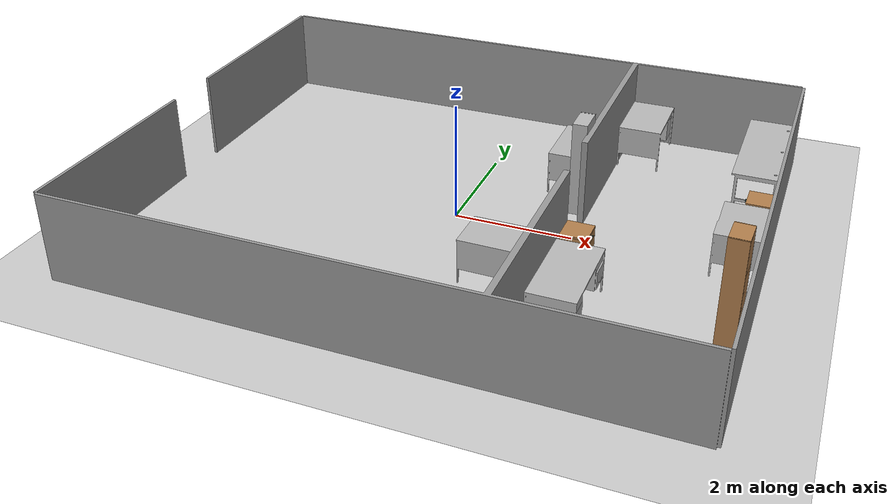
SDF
<sdf version="1.4">
 <world name="default">
  <model name="rnd_room_c3_a">
   <link name="link_0">
    <inertial>
     <mass>1</mass>
     <inertia>
      <ixx>0.166667</ixx>
      <ixy>0</ixy>
      <ixz>0</ixz>
      <iyy>0.166667</iyy>
      <iyz>0</iyz>
      <izz>0.166667</izz>
     </inertia>
    </inertial>
    <visual name="visual">
     <geometry><mesh><uri>model://RandomRooms/rnd_room_c2_04.dae</uri><scale>1 1 1</scale></mesh></geometry>
     <material>
      <lighting>1</lighting>
      <script><uri>model://RandomRooms/rnd_room_c2_04.dae</uri><name>Gazebo/Grey</name></script>
      <shader type="pixel"><normal_map>__default__</normal_map></shader>
     </material>
    </visual>
    <collision name="collision">
     <geometry><mesh><uri>model://RandomRooms/rnd_room_c2_04.dae</uri><scale>1 1 1</scale></mesh></geometry>
     <surface>
      <friction>
       <ode><mu>1</mu><mu2>1</mu2><fdir1>0 0 0</fdir1><slip1>0</slip1><slip2>0</slip2></ode>
       <torsional>
        <coefficient>1</coefficient>
        <patch_radius>0</patch_radius>
        <surface_radius>0</surface_radius>
        <use_patch_radius>1</use_patch_radius>
        <ode><slip>0</slip></ode>
       </torsional>
      </friction>
      <bounce><restitution_coefficient>0</restitution_coefficient><threshold>1e+06</threshold></bounce>
      <contact>
       <collide_without_contact>0</collide_without_contact>
       <collide_without_contact_bitmask>1</collide_without_contact_bitmask>
       <collide_bitmask>1</collide_bitmask>
       <ode>
        <soft_cfm>0</soft_cfm>
        <soft_erp>0.2</soft_erp>
        <kp>1e+13</kp>
        <kd>1</kd>
        <max_vel>0.01</max_vel>
        <min_depth>0</min_depth>
       </ode>
       <bullet>
        <split_impulse>1</split_impulse>
        <split_impulse_penetration_threshold>-0.01</split_impulse_penetration_threshold>
        <soft_cfm>0</soft_cfm>
        <soft_erp>0.2</soft_erp>
        <kp>1e+13</kp>
        <kd>1</kd>
       </bullet>
      </contact>
     </surface>
    </collision>
   </link>
   <static>1</static>
  </model>
  <model name="gplane">
   <link name="body">
    <collision name="gplane_coll">
     <geometry><plane><normal>0 0 1</normal><size>25 25</size></plane></geometry>
     <surface><contact><ode><kp>1e+06</kp><kd>1</kd></ode></contact></surface>
     <laser_retro>2000</laser_retro>
    </collision>
    <visual name="gplane_vis">
     <geometry><plane><normal>0 0 1</normal><size>25 25</size></plane></geometry>
     <material>
      <script>
       <uri>model://base_materials/carpet/scripts</uri>
       <uri>model://base_materials/carpet/textures</uri>
       <name>carpet/carpet01</name>
      </script>
     </material>
     <cast_shadows>0</cast_shadows>
    </visual>
    <velocity_decay><linear>0</linear><angular>0</angular></velocity_decay>
   </link>
   <static>1</static>
  </model>
  <model name="wagon_2">
   <link name="link">
    <inertial>
     <mass>10</mass>
     <inertia><ixx>1</ixx><ixy>0</ixy><ixz>0</ixz><iyy>1</iyy><iyz>0</iyz><izz>1</izz></inertia>
    </inertial>
    <visual name="left_board">
     <pose>-0.2325 0.01 0.345 0 -0 0</pose>
     <geometry><box><size>0.415 0.02 0.59</size></box></geometry>
     <material>
      <script><uri>model://base_materials/wood/scripts/wood.material</uri><name>base_materials/wood</name></script>
     </material>
    </visual>
    <collision name="collision_left_board">
     <pose>-0.2325 0.01 0.345 0 -0 0</pose>
     <geometry><box><size>0.415 0.02 0.59</size></box></geometry>
    </collision>
    <visual name="right_board">
     <pose>-0.2325 0.4325 0.345 0 -0 0</pose>
     <geometry><box><size>0.415 0.02 0.59</size></box></geometry>
     <material>
      <script><uri>model://base_materials/wood/scripts/wood.material</uri><name>base_materials/wood</name></script>
     </material>
    </visual>
    <collision name="collision_right_board">
     <pose>-0.2325 0.4325 0.345 0 -0 0</pose>
     <geometry><box><size>0.415 0.02 0.59</size></box></geometry>
    </collision>
    <visual name="top_board">
     <pose>-0.22 0.2225 0.655 0 -0 0</pose>
     <geometry><box><size>0.44 0.445 0.03</size></box></geometry>
     <material>
      <script><uri>model://base_materials/wood/scripts/wood.material</uri><name>base_materials/wood</name></script>
     </material>
    </visual>
    <collision name="collision_top_board">
     <pose>-0.22 0.2225 0.655 0 -0 0</pose>
     <geometry><box><size>0.44 0.445 0.03</size></box></geometry>
    </collision>
    <visual name="back_board">
     <pose>-0.425 0.2225 0.345 0 -0 0</pose>
     <geometry><box><size>0.02 0.405 0.59</size></box></geometry>
     <material>
      <script><uri>model://base_materials/wood/scripts/wood.material</uri><name>base_materials/wood</name></script>
     </material>
    </visual>
    <collision name="collision_back_board">
     <pose>-0.425 0.2225 0.345 0 -0 0</pose>
     <geometry><box><size>0.02 0.405 0.59</size></box></geometry>
    </collision>
    <visual name="bottom_board">
     <pose>-0.2325 0.2225 0.06 0 -0 0</pose>
     <geometry><box><size>0.415 0.405 0.02</size></box></geometry>
     <material>
      <script><uri>model://base_materials/wood/scripts/wood.material</uri><name>base_materials/wood</name></script>
     </material>
    </visual>
    <collision name="collision_bottom_board">
     <pose>-0.2325 0.2225 0.06 0 -0 0</pose>
     <geometry><box><size>0.415 0.405 0.02</size></box></geometry>
    </collision>
    <visual name="1st_drawer">
     <pose>-0.0125 0.2225 0.57 0 -0 0</pose>
     <geometry><box><size>0.025 0.445 0.14</size></box></geometry>
     <material>
      <script><uri>model://base_materials/wood/scripts/wood.material</uri><name>base_materials/wood</name></script>
     </material>
    </visual>
    <collision name="collision_1st_drawer">
     <pose>-0.0125 0.2225 0.57 0 -0 0</pose>
     <geometry><box><size>0.025 0.445 0.14</size></box></geometry>
    </collision>
    <visual name="1st_drawer_handle_l1">
     <pose>0.0115 0.1895 0.6 3.14159 1.57079 3.14159</pose>
     <geometry><cylinder><radius>0.007</radius><length>0.023</length></cylinder></geometry>
     <material>
      <ambient>0.18431 0.3098 0.3098 1</ambient>
      <diffuse>0.18431 0.3098 0.3098 1</diffuse>
      <specular>0.1 0.1 0.1 1</specular>
     </material>
    </visual>
    <collision name="collision_1st_drawer_handle_l1">
     <pose>0.0115 0.1895 0.6 3.14159 1.57079 3.14159</pose>
     <geometry><cylinder><radius>0.007</radius><length>0.023</length></cylinder></geometry>
    </collision>
    <visual name="1st_drawer_handle_l2">
     <pose>0.023 0.1895 0.6 0 -0 0</pose>
     <geometry><sphere><radius>0.007</radius></sphere></geometry>
     <material>
      <ambient>0.18431 0.3098 0.3098 1</ambient>
      <diffuse>0.18431 0.3098 0.3098 1</diffuse>
      <specular>0.1 0.1 0.1 1</specular>
     </material>
    </visual>
    <collision name="collision_1st_drawer_handle_l2">
     <pose>0.023 0.1895 0.6 0 -0 0</pose>
     <geometry><sphere><radius>0.007</radius></sphere></geometry>
    </collision>
    <visual name="1st_drawer_handle_r1">
     <pose>0.0115 0.2555 0.6 3.14159 1.57079 3.14159</pose>
     <geometry><cylinder><radius>0.007</radius><length>0.023</length></cylinder></geometry>
     <material>
      <ambient>0.18431 0.3098 0.3098 1</ambient>
      <diffuse>0.18431 0.3098 0.3098 1</diffuse>
      <specular>0.1 0.1 0.1 1</specular>
     </material>
    </visual>
    <collision name="collision_1st_drawer_handle_r1">
     <pose>0.0115 0.2555 0.6 3.14159 1.57079 3.14159</pose>
     <geometry><cylinder><radius>0.007</radius><length>0.023</length></cylinder></geometry>
    </collision>
    <visual name="1st_drawer_handle_r2">
     <pose>0.023 0.2555 0.6 0 -0 0</pose>
     <geometry><sphere><radius>0.007</radius></sphere></geometry>
     <material>
      <ambient>0.18431 0.3098 0.3098 1</ambient>
      <diffuse>0.18431 0.3098 0.3098 1</diffuse>
      <specular>0.1 0.1 0.1 1</specular>
     </material>
    </visual>
    <collision name="collision_1st_drawer_handle_r2">
     <pose>0.023 0.2555 0.6 0 -0 0</pose>
     <geometry><sphere><radius>0.007</radius></sphere></geometry>
    </collision>
    <visual name="1st_drawer_handle_center">
     <pose>0.023 0.2225 0.6 1.5708 -0 0</pose>
     <geometry><cylinder><radius>0.007</radius><length>0.066</length></cylinder></geometry>
     <material>
      <ambient>0.18431 0.3098 0.3098 1</ambient>
      <diffuse>0.18431 0.3098 0.3098 1</diffuse>
      <specular>0.1 0.1 0.1 1</specular>
     </material>
    </visual>
    <collision name="collision_1st_drawer_handle_center">
     <pose>0.023 0.2225 0.6 1.5708 -0 0</pose>
     <geometry><cylinder><radius>0.007</radius><length>0.066</length></cylinder></geometry>
    </collision>
    <visual name="2nd_drawer">
     <pose>-0.0125 0.2225 0.275 0 -0 0</pose>
     <geometry><box><size>0.025 0.445 0.45</size></box></geometry>
     <material>
      <script><uri>model://base_materials/wood/scripts/wood.material</uri><name>base_materials/wood</name></script>
     </material>
    </visual>
    <collision name="collision_2nd_drawer">
     <pose>-0.0125 0.2225 0.275 0 -0 0</pose>
     <geometry><box><size>0.025 0.445 0.45</size></box></geometry>
    </collision>
    <visual name="2nd_drawer_handle_top1">
     <pose>0.0115 0.04 0.47 3.14159 1.57079 3.14159</pose>
     <geometry><cylinder><radius>0.007</radius><length>0.023</length></cylinder></geometry>
     <material>
      <ambient>0.18431 0.3098 0.3098 1</ambient>
      <diffuse>0.18431 0.3098 0.3098 1</diffuse>
      <specular>0.1 0.1 0.1 1</specular>
     </material>
    </visual>
    <collision name="collision_2nd_drawer_handle_top1">
     <pose>0.0115 0.04 0.47 3.14159 1.57079 3.14159</pose>
     <geometry><cylinder><radius>0.007</radius><length>0.023</length></cylinder></geometry>
    </collision>
    <visual name="2nd_drawer_handle_top2">
     <pose>0.023 0.04 0.47 0 -0 0</pose>
     <geometry><sphere><radius>0.007</radius></sphere></geometry>
     <material>
      <ambient>0.18431 0.3098 0.3098 1</ambient>
      <diffuse>0.18431 0.3098 0.3098 1</diffuse>
      <specular>0.1 0.1 0.1 1</specular>
     </material>
    </visual>
    <collision name="2nd_drawer_handle_top2">
     <pose>0.023 0.04 0.47 0 -0 0</pose>
     <geometry><sphere><radius>0.007</radius></sphere></geometry>
    </collision>
    <visual name="2nd_drawer_handle_bottom1">
     <pose>0.0115 0.04 0.404 3.14159 1.57079 3.14159</pose>
     <geometry><cylinder><radius>0.007</radius><length>0.023</length></cylinder></geometry>
     <material>
      <ambient>0.18431 0.3098 0.3098 1</ambient>
      <diffuse>0.18431 0.3098 0.3098 1</diffuse>
      <specular>0.1 0.1 0.1 1</specular>
     </material>
    </visual>
    <collision name="collision_2nd_drawer_handle_bottom1">
     <pose>0.0115 0.04 0.404 3.14159 1.57079 3.14159</pose>
     <geometry><cylinder><radius>0.007</radius><length>0.023</length></cylinder></geometry>
    </collision>
    <visual name="2nd_drawer_handle_bottom2">
     <pose>0.023 0.04 0.404 0 -0 0</pose>
     <geometry><sphere><radius>0.007</radius></sphere></geometry>
     <material>
      <ambient>0.18431 0.3098 0.3098 1</ambient>
      <diffuse>0.18431 0.3098 0.3098 1</diffuse>
      <specular>0.1 0.1 0.1 1</specular>
     </material>
    </visual>
    <collision name="2nd_drawer_handle_bottom2">
     <pose>0.023 0.04 0.404 0 -0 0</pose>
     <geometry><sphere><radius>0.007</radius></sphere></geometry>
    </collision>
    <visual name="2nd_drawer_handle_center">
     <pose>0.023 0.04 0.437 0 -0 0</pose>
     <geometry><cylinder><radius>0.007</radius><length>0.066</length></cylinder></geometry>
     <material>
      <ambient>0.18431 0.3098 0.3098 1</ambient>
      <diffuse>0.18431 0.3098 0.3098 1</diffuse>
      <specular>0.1 0.1 0.1 1</specular>
     </material>
    </visual>
    <collision name="collision_2nd_drawer_handle_center">
     <pose>0.023 0.04 0.437 0 -0 0</pose>
     <geometry><cylinder><radius>0.007</radius><length>0.066</length></cylinder></geometry>
    </collision>
    <visual name="left_front_caster">
     <pose>-0.07 0.025 0.025 3.14159 1.57079 3.14159</pose>
     <geometry><cylinder><radius>0.025</radius><length>0.035</length></cylinder></geometry>
     <material><script><name>Gazebo/Black</name><uri>__default__</uri></script></material>
    </visual>
    <collision name="collision_left_front_caster">
     <pose>-0.07 0.025 0.025 3.14159 1.57079 3.14159</pose>
     <geometry><cylinder><radius>0.025</radius><length>0.035</length></cylinder></geometry>
    </collision>
    <visual name="right_front_caster">
     <pose>-0.07 0.42 0.025 3.14159 1.57079 3.14159</pose>
     <geometry><cylinder><radius>0.025</radius><length>0.035</length></cylinder></geometry>
     <material><script><name>Gazebo/Black</name><uri>__default__</uri></script></material>
    </visual>
    <collision name="collision_right_front_caster">
     <pose>-0.07 0.42 0.025 3.14159 1.57079 3.14159</pose>
     <geometry><cylinder><radius>0.025</radius><length>0.035</length></cylinder></geometry>
    </collision>
    <visual name="left_back_caster">
     <pose>-0.39 0.025 0.025 3.14159 1.57079 3.14159</pose>
     <geometry><cylinder><radius>0.025</radius><length>0.035</length></cylinder></geometry>
     <material><script><name>Gazebo/Black</name><uri>__default__</uri></script></material>
    </visual>
    <collision name="collision_left_back_caster">
     <pose>-0.39 0.025 0.025 3.14159 1.57079 3.14159</pose>
     <geometry><cylinder><radius>0.025</radius><length>0.035</length></cylinder></geometry>
    </collision>
    <visual name="right_back_caster">
     <pose>-0.39 0.42 0.025 3.14159 1.57079 3.14159</pose>
     <geometry><cylinder><radius>0.025</radius><length>0.035</length></cylinder></geometry>
     <material><script><name>Gazebo/Black</name><uri>__default__</uri></script></material>
    </visual>
    <collision name="collision_right_back_caster">
     <pose>-0.39 0.42 0.025 3.14159 1.57079 3.14159</pose>
     <geometry><cylinder><radius>0.025</radius><length>0.035</length></cylinder></geometry>
    </collision>
    <velocity_decay><linear>0</linear><angular>0</angular></velocity_decay>
   </link>
   <static>1</static>
   <pose>4.55001 1.42245 0 0 -0 3.13181</pose>
  </model>
  <model name="high_shelf_1">
   <link name="link">
    <inertial>
     <mass>5</mass>
     <inertia><ixx>1</ixx><ixy>0</ixy><ixz>0</ixz><iyy>1</iyy><iyz>0</iyz><izz>1</izz></inertia>
    </inertial>
    <visual name="left_board">
     <pose>-0.1475 0.009 0.898 0 -0 0</pose>
     <geometry><box><size>0.295 0.018 1.796</size></box></geometry>
     <material>
      <script>
       <uri>model://base_materials/wood/scripts</uri>
       <uri>model://base_materials/wood/textures</uri>
       <name>base_materials/light_wood</name>
      </script>
     </material>
    </visual>
    <collision name="collision_left_board">
     <pose>-0.1475 0.009 0.898 0 -0 0</pose>
     <geometry><box><size>0.295 0.018 1.796</size></box></geometry>
    </collision>
    <visual name="right_board">
     <pose>-0.1475 0.441 0.898 0 -0 0</pose>
     <geometry><box><size>0.295 0.018 1.796</size></box></geometry>
     <material>
      <script>
       <uri>model://base_materials/wood/scripts</uri>
       <uri>model://base_materials/wood/textures</uri>
       <name>base_materials/light_wood</name>
      </script>
     </material>
    </visual>
    <collision name="collision_right_board">
     <pose>-0.1475 0.441 0.898 0 -0 0</pose>
     <geometry><box><size>0.295 0.018 1.796</size></box></geometry>
    </collision>
    <visual name="top_board">
     <pose>-0.1475 0.225 1.7825 0 -0 0</pose>
     <geometry><box><size>0.295 0.414 0.035</size></box></geometry>
     <material>
      <script>
       <uri>model://base_materials/wood/scripts</uri>
       <uri>model://base_materials/wood/textures</uri>
       <name>base_materials/light_wood</name>
      </script>
     </material>
    </visual>
    <collision name="collision_top_board">
     <pose>-0.1475 0.225 1.7825 0 -0 0</pose>
     <geometry><box><size>0.295 0.414 0.035</size></box></geometry>
    </collision>
    <visual name="1st_shelf">
     <pose>-0.162 0.225 1.51 0 -0 0</pose>
     <geometry><box><size>0.266 0.414 0.018</size></box></geometry>
     <material>
      <script>
       <uri>model://base_materials/wood/scripts</uri>
       <uri>model://base_materials/wood/textures</uri>
       <name>base_materials/light_wood</name>
      </script>
     </material>
    </visual>
    <collision name="collision_1st_shelf">
     <pose>-0.162 0.225 1.51 0 -0 0</pose>
     <geometry><box><size>0.266 0.414 0.018</size></box></geometry>
    </collision>
    <visual name="2nd_shelf">
     <pose>-0.162 0.225 1.22 0 -0 0</pose>
     <geometry><box><size>0.266 0.414 0.018</size></box></geometry>
     <material>
      <script>
       <uri>model://base_materials/wood/scripts</uri>
       <uri>model://base_materials/wood/textures</uri>
       <name>base_materials/light_wood</name>
      </script>
     </material>
    </visual>
    <collision name="collision_2nd_shelf">
     <pose>-0.162 0.225 1.22 0 -0 0</pose>
     <geometry><box><size>0.266 0.414 0.018</size></box></geometry>
    </collision>
    <visual name="3rd_shelf">
     <pose>-0.162 0.225 0.93 0 -0 0</pose>
     <geometry><box><size>0.266 0.414 0.018</size></box></geometry>
     <material>
      <script>
       <uri>model://base_materials/wood/scripts</uri>
       <uri>model://base_materials/wood/textures</uri>
       <name>base_materials/light_wood</name>
      </script>
     </material>
    </visual>
    <collision name="collision_3rd_shelf">
     <pose>-0.162 0.225 0.93 0 -0 0</pose>
     <geometry><box><size>0.266 0.414 0.018</size></box></geometry>
    </collision>
    <visual name="4th_shelf">
     <pose>-0.162 0.225 0.65 0 -0 0</pose>
     <geometry><box><size>0.266 0.414 0.018</size></box></geometry>
     <material>
      <script>
       <uri>model://base_materials/wood/scripts</uri>
       <uri>model://base_materials/wood/textures</uri>
       <name>base_materials/light_wood</name>
      </script>
     </material>
    </visual>
    <collision name="collision_4th_shelf">
     <pose>-0.162 0.225 0.65 0 -0 0</pose>
     <geometry><box><size>0.266 0.414 0.018</size></box></geometry>
    </collision>
    <visual name="5th_shelf">
     <pose>-0.162 0.225 0.36 0 -0 0</pose>
     <geometry><box><size>0.266 0.414 0.018</size></box></geometry>
     <material>
      <script>
       <uri>model://base_materials/wood/scripts</uri>
       <uri>model://base_materials/wood/textures</uri>
       <name>base_materials/light_wood</name>
      </script>
     </material>
    </visual>
    <collision name="collision_5th_shelf">
     <pose>-0.162 0.225 0.36 0 -0 0</pose>
     <geometry><box><size>0.266 0.414 0.018</size></box></geometry>
    </collision>
    <visual name="bottom_board">
     <pose>-0.1475 0.225 0.035 0 -0 0</pose>
     <geometry><box><size>0.295 0.414 0.07</size></box></geometry>
     <material>
      <script>
       <uri>model://base_materials/wood/scripts</uri>
       <uri>model://base_materials/wood/textures</uri>
       <name>base_materials/light_wood</name>
      </script>
     </material>
    </visual>
    <collision name="collision_bottom_board">
     <pose>-0.1475 0.225 0.035 0 -0 0</pose>
     <geometry><box><size>0.295 0.414 0.07</size></box></geometry>
    </collision>
    <visual name="back_board">
     <pose>-0.286 0.225 0.898 0 -0 0</pose>
     <geometry><box><size>0.018 0.414 1.796</size></box></geometry>
     <material>
      <script>
       <uri>model://base_materials/wood/scripts</uri>
       <uri>model://base_materials/wood/textures</uri>
       <name>base_materials/light_wood</name>
      </script>
     </material>
    </visual>
    <collision name="collision_back_board">
     <pose>-0.286 0.225 0.898 0 -0 0</pose>
     <geometry><box><size>0.018 0.414 1.796</size></box></geometry>
    </collision>
    <velocity_decay><linear>0</linear><angular>0</angular></velocity_decay>
   </link>
   <static>1</static>
   <pose>4.62882 -1.60965 0 0 -0 3.10393</pose>
  </model>
  <model name="Desk_04_1">
   <link name="link_0">
    <inertial>
     <mass>15</mass>
     <inertia>
      <ixx>0.166667</ixx>
      <ixy>0</ixy>
      <ixz>0</ixz>
      <iyy>0.166667</iyy>
      <iyz>0</iyz>
      <izz>0.166667</izz>
     </inertia>
    </inertial>
    <visual name="visual">
     <geometry><mesh><uri>model://BioRoboticsLab/meshes/Desk_04.dae</uri><scale>1 1 1</scale></mesh></geometry>
     <material><lighting>1</lighting><shader type="pixel"/></material>
    </visual>
    <collision name="collision">
     <geometry><mesh><uri>model://BioRoboticsLab/meshes/Desk_04.dae</uri><scale>1 1 1</scale></mesh></geometry>
     <surface>
      <friction>
       <ode><mu>1</mu><mu2>1</mu2><fdir1>0 0 0</fdir1><slip1>0</slip1><slip2>0</slip2></ode>
       <torsional>
        <coefficient>1</coefficient>
        <patch_radius>0</patch_radius>
        <surface_radius>0</surface_radius>
        <use_patch_radius>1</use_patch_radius>
        <ode><slip>0</slip></ode>
       </torsional>
      </friction>
      <bounce><restitution_coefficient>0</restitution_coefficient><threshold>1e+06</threshold></bounce>
      <contact>
       <collide_without_contact>0</collide_without_contact>
       <collide_without_contact_bitmask>1</collide_without_contact_bitmask>
       <collide_bitmask>1</collide_bitmask>
       <ode>
        <soft_cfm>0</soft_cfm>
        <soft_erp>0.2</soft_erp>
        <kp>1e+13</kp>
        <kd>1</kd>
        <max_vel>0.01</max_vel>
        <min_depth>0</min_depth>
       </ode>
       <bullet>
        <split_impulse>1</split_impulse>
        <split_impulse_penetration_threshold>-0.01</split_impulse_penetration_threshold>
        <soft_cfm>0</soft_cfm>
        <soft_erp>0.2</soft_erp>
        <kp>1e+13</kp>
        <kd>1</kd>
       </bullet>
      </contact>
     </surface>
    </collision>
   </link>
   <static>1</static>
   <pose>1.33765 -1.49869 0 0 0 -0.014881</pose>
  </model>
  <model name="Desk_01_2">
   <link name="link_0">
    <inertial>
     <mass>35</mass>
     <inertia>
      <ixx>0.166667</ixx>
      <ixy>0</ixy>
      <ixz>0</ixz>
      <iyy>0.166667</iyy>
      <iyz>0</iyz>
      <izz>0.166667</izz>
     </inertia>
    </inertial>
    <visual name="visual">
     <geometry><mesh><uri>model://BioRoboticsLab/meshes/Desk_01.dae</uri><scale>1 1 1</scale></mesh></geometry>
     <material><lighting>1</lighting><shader type="pixel"/></material>
    </visual>
    <collision name="collision">
     <geometry><mesh><uri>model://BioRoboticsLab/meshes/Desk_01.dae</uri><scale>1 1 1</scale></mesh></geometry>
     <surface>
      <friction>
       <ode><mu>1</mu><mu2>1</mu2><fdir1>0 0 0</fdir1><slip1>0</slip1><slip2>0</slip2></ode>
       <torsional>
        <coefficient>1</coefficient>
        <patch_radius>0</patch_radius>
        <surface_radius>0</surface_radius>
        <use_patch_radius>1</use_patch_radius>
        <ode><slip>0</slip></ode>
       </torsional>
      </friction>
      <bounce><restitution_coefficient>0</restitution_coefficient><threshold>1e+06</threshold></bounce>
      <contact>
       <collide_without_contact>0</collide_without_contact>
       <collide_without_contact_bitmask>1</collide_without_contact_bitmask>
       <collide_bitmask>1</collide_bitmask>
       <ode>
        <soft_cfm>0</soft_cfm>
        <soft_erp>0.2</soft_erp>
        <kp>1e+13</kp>
        <kd>1</kd>
        <max_vel>0.01</max_vel>
        <min_depth>0</min_depth>
       </ode>
       <bullet>
        <split_impulse>1</split_impulse>
        <split_impulse_penetration_threshold>-0.01</split_impulse_penetration_threshold>
        <soft_cfm>0</soft_cfm>
        <soft_erp>0.2</soft_erp>
        <kp>1e+13</kp>
        <kd>1</kd>
       </bullet>
      </contact>
     </surface>
    </collision>
   </link>
   <static>1</static>
   <pose>2.47338 -2.02558 0 0 -0 -1.57603</pose>
  </model>
  <model name="Shelf_02_2">
   <link name="link_0">
    <inertial>
     <mass>12</mass>
     <inertia>
      <ixx>0.166667</ixx>
      <ixy>0</ixy>
      <ixz>0</ixz>
      <iyy>0.166667</iyy>
      <iyz>0</iyz>
      <izz>0.166667</izz>
     </inertia>
    </inertial>
    <visual name="visual">
     <geometry><mesh><uri>model://BioRoboticsLab/meshes/Shelf_02.dae</uri><scale>1 1 1</scale></mesh></geometry>
     <material><lighting>1</lighting><shader type="pixel"/></material>
    </visual>
    <collision name="collision">
     <geometry><mesh><uri>model://BioRoboticsLab/meshes/Shelf_02.dae</uri><scale>1 1 1</scale></mesh></geometry>
     <surface>
      <friction>
       <ode><mu>1</mu><mu2>1</mu2><fdir1>0 0 0</fdir1><slip1>0</slip1><slip2>0</slip2></ode>
       <torsional>
        <coefficient>1</coefficient>
        <patch_radius>0</patch_radius>
        <surface_radius>0</surface_radius>
        <use_patch_radius>1</use_patch_radius>
        <ode><slip>0</slip></ode>
       </torsional>
      </friction>
      <bounce><restitution_coefficient>0</restitution_coefficient><threshold>1e+06</threshold></bounce>
      <contact>
       <collide_without_contact>0</collide_without_contact>
       <collide_without_contact_bitmask>1</collide_without_contact_bitmask>
       <collide_bitmask>1</collide_bitmask>
       <ode>
        <soft_cfm>0</soft_cfm>
        <soft_erp>0.2</soft_erp>
        <kp>1e+13</kp>
        <kd>1</kd>
        <max_vel>0.01</max_vel>
        <min_depth>0</min_depth>
       </ode>
       <bullet>
        <split_impulse>1</split_impulse>
        <split_impulse_penetration_threshold>-0.01</split_impulse_penetration_threshold>
        <soft_cfm>0</soft_cfm>
        <soft_erp>0.2</soft_erp>
        <kp>1e+13</kp>
        <kd>1</kd>
       </bullet>
      </contact>
     </surface>
    </collision>
   </link>
   <static>1</static>
   <pose>1.83849 1.01164 0 0 -0 1.57341</pose>
  </model>
  <model name="Desk_03_2">
   <link name="link_0">
    <inertial>
     <mass>25</mass>
     <inertia>
      <ixx>0.166667</ixx>
      <ixy>0</ixy>
      <ixz>0</ixz>
      <iyy>0.166667</iyy>
      <iyz>0</iyz>
      <izz>0.166667</izz>
     </inertia>
    </inertial>
    <visual name="visual">
     <geometry><mesh><uri>model://BioRoboticsLab/meshes/Desk_03.dae</uri><scale>1 1 1</scale></mesh></geometry>
     <material><lighting>1</lighting><shader type="pixel"/></material>
    </visual>
    <collision name="collision">
     <geometry><mesh><uri>model://BioRoboticsLab/meshes/Desk_03.dae</uri><scale>1 1 1</scale></mesh></geometry>
     <surface>
      <friction>
       <ode><mu>1</mu><mu2>1</mu2><fdir1>0 0 0</fdir1><slip1>0</slip1><slip2>0</slip2></ode>
       <torsional>
        <coefficient>1</coefficient>
        <patch_radius>0</patch_radius>
        <surface_radius>0</surface_radius>
        <use_patch_radius>1</use_patch_radius>
        <ode><slip>0</slip></ode>
       </torsional>
      </friction>
      <bounce><restitution_coefficient>0</restitution_coefficient><threshold>1e+06</threshold></bounce>
      <contact>
       <collide_without_contact>0</collide_without_contact>
       <collide_without_contact_bitmask>1</collide_without_contact_bitmask>
       <collide_bitmask>1</collide_bitmask>
       <ode>
        <soft_cfm>0</soft_cfm>
        <soft_erp>0.2</soft_erp>
        <kp>1e+13</kp>
        <kd>1</kd>
        <max_vel>0.01</max_vel>
        <min_depth>0</min_depth>
       </ode>
       <bullet>
        <split_impulse>1</split_impulse>
        <split_impulse_penetration_threshold>-0.01</split_impulse_penetration_threshold>
        <soft_cfm>0</soft_cfm>
        <soft_erp>0.2</soft_erp>
        <kp>1e+13</kp>
        <kd>1</kd>
       </bullet>
      </contact>
     </surface>
    </collision>
   </link>
   <static>1</static>
   <pose>2.42832 3.36579 0 0 0 -1.57316</pose>
  </model>
  <model name="Desk_03_3">
   <link name="link_0">
    <inertial>
     <mass>25</mass>
     <inertia>
      <ixx>0.166667</ixx>
      <ixy>0</ixy>
      <ixz>0</ixz>
      <iyy>0.166667</iyy>
      <iyz>0</iyz>
      <izz>0.166667</izz>
     </inertia>
    </inertial>
    <visual name="visual">
     <geometry><mesh><uri>model://BioRoboticsLab/meshes/Desk_03.dae</uri><scale>1 1 1</scale></mesh></geometry>
     <material><lighting>1</lighting><shader type="pixel"/></material>
    </visual>
    <collision name="collision">
     <geometry><mesh><uri>model://BioRoboticsLab/meshes/Desk_03.dae</uri><scale>1 1 1</scale></mesh></geometry>
     <surface>
      <friction>
       <ode><mu>1</mu><mu2>1</mu2><fdir1>0 0 0</fdir1><slip1>0</slip1><slip2>0</slip2></ode>
       <torsional>
        <coefficient>1</coefficient>
        <patch_radius>0</patch_radius>
        <surface_radius>0</surface_radius>
        <use_patch_radius>1</use_patch_radius>
        <ode><slip>0</slip></ode>
       </torsional>
      </friction>
      <bounce><restitution_coefficient>0</restitution_coefficient><threshold>1e+06</threshold></bounce>
      <contact>
       <collide_without_contact>0</collide_without_contact>
       <collide_without_contact_bitmask>1</collide_without_contact_bitmask>
       <collide_bitmask>1</collide_bitmask>
       <ode>
        <soft_cfm>0</soft_cfm>
        <soft_erp>0.2</soft_erp>
        <kp>1e+13</kp>
        <kd>1</kd>
        <max_vel>0.01</max_vel>
        <min_depth>0</min_depth>
       </ode>
       <bullet>
        <split_impulse>1</split_impulse>
        <split_impulse_penetration_threshold>-0.01</split_impulse_penetration_threshold>
        <soft_cfm>0</soft_cfm>
        <soft_erp>0.2</soft_erp>
        <kp>1e+13</kp>
        <kd>1</kd>
       </bullet>
      </contact>
     </surface>
    </collision>
   </link>
   <static>1</static>
   <pose>1.54639 1.92602 0 0 -0 1.57445</pose>
  </model>
  <model name="wagon_3">
   <link name="link">
    <inertial>
     <mass>10</mass>
     <inertia><ixx>1</ixx><ixy>0</ixy><ixz>0</ixz><iyy>1</iyy><iyz>0</iyz><izz>1</izz></inertia>
    </inertial>
    <visual name="left_board">
     <pose>-0.2325 0.01 0.345 0 -0 0</pose>
     <geometry><box><size>0.415 0.02 0.59</size></box></geometry>
     <material>
      <script><uri>model://base_materials/wood/scripts/wood.material</uri><name>base_materials/wood</name></script>
     </material>
    </visual>
    <collision name="collision_left_board">
     <pose>-0.2325 0.01 0.345 0 -0 0</pose>
     <geometry><box><size>0.415 0.02 0.59</size></box></geometry>
    </collision>
    <visual name="right_board">
     <pose>-0.2325 0.4325 0.345 0 -0 0</pose>
     <geometry><box><size>0.415 0.02 0.59</size></box></geometry>
     <material>
      <script><uri>model://base_materials/wood/scripts/wood.material</uri><name>base_materials/wood</name></script>
     </material>
    </visual>
    <collision name="collision_right_board">
     <pose>-0.2325 0.4325 0.345 0 -0 0</pose>
     <geometry><box><size>0.415 0.02 0.59</size></box></geometry>
    </collision>
    <visual name="top_board">
     <pose>-0.22 0.2225 0.655 0 -0 0</pose>
     <geometry><box><size>0.44 0.445 0.03</size></box></geometry>
     <material>
      <script><uri>model://base_materials/wood/scripts/wood.material</uri><name>base_materials/wood</name></script>
     </material>
    </visual>
    <collision name="collision_top_board">
     <pose>-0.22 0.2225 0.655 0 -0 0</pose>
     <geometry><box><size>0.44 0.445 0.03</size></box></geometry>
    </collision>
    <visual name="back_board">
     <pose>-0.425 0.2225 0.345 0 -0 0</pose>
     <geometry><box><size>0.02 0.405 0.59</size></box></geometry>
     <material>
      <script><uri>model://base_materials/wood/scripts/wood.material</uri><name>base_materials/wood</name></script>
     </material>
    </visual>
    <collision name="collision_back_board">
     <pose>-0.425 0.2225 0.345 0 -0 0</pose>
     <geometry><box><size>0.02 0.405 0.59</size></box></geometry>
    </collision>
    <visual name="bottom_board">
     <pose>-0.2325 0.2225 0.06 0 -0 0</pose>
     <geometry><box><size>0.415 0.405 0.02</size></box></geometry>
     <material>
      <script><uri>model://base_materials/wood/scripts/wood.material</uri><name>base_materials/wood</name></script>
     </material>
    </visual>
    <collision name="collision_bottom_board">
     <pose>-0.2325 0.2225 0.06 0 -0 0</pose>
     <geometry><box><size>0.415 0.405 0.02</size></box></geometry>
    </collision>
    <visual name="1st_drawer">
     <pose>-0.0125 0.2225 0.57 0 -0 0</pose>
     <geometry><box><size>0.025 0.445 0.14</size></box></geometry>
     <material>
      <script><uri>model://base_materials/wood/scripts/wood.material</uri><name>base_materials/wood</name></script>
     </material>
    </visual>
    <collision name="collision_1st_drawer">
     <pose>-0.0125 0.2225 0.57 0 -0 0</pose>
     <geometry><box><size>0.025 0.445 0.14</size></box></geometry>
    </collision>
    <visual name="1st_drawer_handle_l1">
     <pose>0.0115 0.1895 0.6 3.14159 1.57079 3.14159</pose>
     <geometry><cylinder><radius>0.007</radius><length>0.023</length></cylinder></geometry>
     <material>
      <ambient>0.18431 0.3098 0.3098 1</ambient>
      <diffuse>0.18431 0.3098 0.3098 1</diffuse>
      <specular>0.1 0.1 0.1 1</specular>
     </material>
    </visual>
    <collision name="collision_1st_drawer_handle_l1">
     <pose>0.0115 0.1895 0.6 3.14159 1.57079 3.14159</pose>
     <geometry><cylinder><radius>0.007</radius><length>0.023</length></cylinder></geometry>
    </collision>
    <visual name="1st_drawer_handle_l2">
     <pose>0.023 0.1895 0.6 0 -0 0</pose>
     <geometry><sphere><radius>0.007</radius></sphere></geometry>
     <material>
      <ambient>0.18431 0.3098 0.3098 1</ambient>
      <diffuse>0.18431 0.3098 0.3098 1</diffuse>
      <specular>0.1 0.1 0.1 1</specular>
     </material>
    </visual>
    <collision name="collision_1st_drawer_handle_l2">
     <pose>0.023 0.1895 0.6 0 -0 0</pose>
     <geometry><sphere><radius>0.007</radius></sphere></geometry>
    </collision>
    <visual name="1st_drawer_handle_r1">
     <pose>0.0115 0.2555 0.6 3.14159 1.57079 3.14159</pose>
     <geometry><cylinder><radius>0.007</radius><length>0.023</length></cylinder></geometry>
     <material>
      <ambient>0.18431 0.3098 0.3098 1</ambient>
      <diffuse>0.18431 0.3098 0.3098 1</diffuse>
      <specular>0.1 0.1 0.1 1</specular>
     </material>
    </visual>
    <collision name="collision_1st_drawer_handle_r1">
     <pose>0.0115 0.2555 0.6 3.14159 1.57079 3.14159</pose>
     <geometry><cylinder><radius>0.007</radius><length>0.023</length></cylinder></geometry>
    </collision>
    <visual name="1st_drawer_handle_r2">
     <pose>0.023 0.2555 0.6 0 -0 0</pose>
     <geometry><sphere><radius>0.007</radius></sphere></geometry>
     <material>
      <ambient>0.18431 0.3098 0.3098 1</ambient>
      <diffuse>0.18431 0.3098 0.3098 1</diffuse>
      <specular>0.1 0.1 0.1 1</specular>
     </material>
    </visual>
    <collision name="collision_1st_drawer_handle_r2">
     <pose>0.023 0.2555 0.6 0 -0 0</pose>
     <geometry><sphere><radius>0.007</radius></sphere></geometry>
    </collision>
    <visual name="1st_drawer_handle_center">
     <pose>0.023 0.2225 0.6 1.5708 -0 0</pose>
     <geometry><cylinder><radius>0.007</radius><length>0.066</length></cylinder></geometry>
     <material>
      <ambient>0.18431 0.3098 0.3098 1</ambient>
      <diffuse>0.18431 0.3098 0.3098 1</diffuse>
      <specular>0.1 0.1 0.1 1</specular>
     </material>
    </visual>
    <collision name="collision_1st_drawer_handle_center">
     <pose>0.023 0.2225 0.6 1.5708 -0 0</pose>
     <geometry><cylinder><radius>0.007</radius><length>0.066</length></cylinder></geometry>
    </collision>
    <visual name="2nd_drawer">
     <pose>-0.0125 0.2225 0.275 0 -0 0</pose>
     <geometry><box><size>0.025 0.445 0.45</size></box></geometry>
     <material>
      <script><uri>model://base_materials/wood/scripts/wood.material</uri><name>base_materials/wood</name></script>
     </material>
    </visual>
    <collision name="collision_2nd_drawer">
     <pose>-0.0125 0.2225 0.275 0 -0 0</pose>
     <geometry><box><size>0.025 0.445 0.45</size></box></geometry>
    </collision>
    <visual name="2nd_drawer_handle_top1">
     <pose>0.0115 0.04 0.47 3.14159 1.57079 3.14159</pose>
     <geometry><cylinder><radius>0.007</radius><length>0.023</length></cylinder></geometry>
     <material>
      <ambient>0.18431 0.3098 0.3098 1</ambient>
      <diffuse>0.18431 0.3098 0.3098 1</diffuse>
      <specular>0.1 0.1 0.1 1</specular>
     </material>
    </visual>
    <collision name="collision_2nd_drawer_handle_top1">
     <pose>0.0115 0.04 0.47 3.14159 1.57079 3.14159</pose>
     <geometry><cylinder><radius>0.007</radius><length>0.023</length></cylinder></geometry>
    </collision>
    <visual name="2nd_drawer_handle_top2">
     <pose>0.023 0.04 0.47 0 -0 0</pose>
     <geometry><sphere><radius>0.007</radius></sphere></geometry>
     <material>
      <ambient>0.18431 0.3098 0.3098 1</ambient>
      <diffuse>0.18431 0.3098 0.3098 1</diffuse>
      <specular>0.1 0.1 0.1 1</specular>
     </material>
    </visual>
    <collision name="2nd_drawer_handle_top2">
     <pose>0.023 0.04 0.47 0 -0 0</pose>
     <geometry><sphere><radius>0.007</radius></sphere></geometry>
    </collision>
    <visual name="2nd_drawer_handle_bottom1">
     <pose>0.0115 0.04 0.404 3.14159 1.57079 3.14159</pose>
     <geometry><cylinder><radius>0.007</radius><length>0.023</length></cylinder></geometry>
     <material>
      <ambient>0.18431 0.3098 0.3098 1</ambient>
      <diffuse>0.18431 0.3098 0.3098 1</diffuse>
      <specular>0.1 0.1 0.1 1</specular>
     </material>
    </visual>
    <collision name="collision_2nd_drawer_handle_bottom1">
     <pose>0.0115 0.04 0.404 3.14159 1.57079 3.14159</pose>
     <geometry><cylinder><radius>0.007</radius><length>0.023</length></cylinder></geometry>
    </collision>
    <visual name="2nd_drawer_handle_bottom2">
     <pose>0.023 0.04 0.404 0 -0 0</pose>
     <geometry><sphere><radius>0.007</radius></sphere></geometry>
     <material>
      <ambient>0.18431 0.3098 0.3098 1</ambient>
      <diffuse>0.18431 0.3098 0.3098 1</diffuse>
      <specular>0.1 0.1 0.1 1</specular>
     </material>
    </visual>
    <collision name="2nd_drawer_handle_bottom2">
     <pose>0.023 0.04 0.404 0 -0 0</pose>
     <geometry><sphere><radius>0.007</radius></sphere></geometry>
    </collision>
    <visual name="2nd_drawer_handle_center">
     <pose>0.023 0.04 0.437 0 -0 0</pose>
     <geometry><cylinder><radius>0.007</radius><length>0.066</length></cylinder></geometry>
     <material>
      <ambient>0.18431 0.3098 0.3098 1</ambient>
      <diffuse>0.18431 0.3098 0.3098 1</diffuse>
      <specular>0.1 0.1 0.1 1</specular>
     </material>
    </visual>
    <collision name="collision_2nd_drawer_handle_center">
     <pose>0.023 0.04 0.437 0 -0 0</pose>
     <geometry><cylinder><radius>0.007</radius><length>0.066</length></cylinder></geometry>
    </collision>
    <visual name="left_front_caster">
     <pose>-0.07 0.025 0.025 3.14159 1.57079 3.14159</pose>
     <geometry><cylinder><radius>0.025</radius><length>0.035</length></cylinder></geometry>
     <material><script><name>Gazebo/Black</name><uri>__default__</uri></script></material>
    </visual>
    <collision name="collision_left_front_caster">
     <pose>-0.07 0.025 0.025 3.14159 1.57079 3.14159</pose>
     <geometry><cylinder><radius>0.025</radius><length>0.035</length></cylinder></geometry>
    </collision>
    <visual name="right_front_caster">
     <pose>-0.07 0.42 0.025 3.14159 1.57079 3.14159</pose>
     <geometry><cylinder><radius>0.025</radius><length>0.035</length></cylinder></geometry>
     <material><script><name>Gazebo/Black</name><uri>__default__</uri></script></material>
    </visual>
    <collision name="collision_right_front_caster">
     <pose>-0.07 0.42 0.025 3.14159 1.57079 3.14159</pose>
     <geometry><cylinder><radius>0.025</radius><length>0.035</length></cylinder></geometry>
    </collision>
    <visual name="left_back_caster">
     <pose>-0.39 0.025 0.025 3.14159 1.57079 3.14159</pose>
     <geometry><cylinder><radius>0.025</radius><length>0.035</length></cylinder></geometry>
     <material><script><name>Gazebo/Black</name><uri>__default__</uri></script></material>
    </visual>
    <collision name="collision_left_back_caster">
     <pose>-0.39 0.025 0.025 3.14159 1.57079 3.14159</pose>
     <geometry><cylinder><radius>0.025</radius><length>0.035</length></cylinder></geometry>
    </collision>
    <visual name="right_back_caster">
     <pose>-0.39 0.42 0.025 3.14159 1.57079 3.14159</pose>
     <geometry><cylinder><radius>0.025</radius><length>0.035</length></cylinder></geometry>
     <material><script><name>Gazebo/Black</name><uri>__default__</uri></script></material>
    </visual>
    <collision name="collision_right_back_caster">
     <pose>-0.39 0.42 0.025 3.14159 1.57079 3.14159</pose>
     <geometry><cylinder><radius>0.025</radius><length>0.035</length></cylinder></geometry>
    </collision>
    <velocity_decay><linear>0</linear><angular>0</angular></velocity_decay>
   </link>
   <static>1</static>
   <pose>2.50551 -1.00859 0 0 0 -0.012009</pose>
  </model>
  <model name="Table_01_1">
   <link name="link_0">
    <inertial>
     <mass>14</mass>
     <inertia>
      <ixx>0.166667</ixx>
      <ixy>0</ixy>
      <ixz>0</ixz>
      <iyy>0.166667</iyy>
      <iyz>0</iyz>
      <izz>0.166667</izz>
     </inertia>
    </inertial>
    <visual name="visual">
     <geometry><mesh><uri>model://BioRoboticsLab/meshes/Table_01.dae</uri><scale>1 1 1</scale></mesh></geometry>
     <material><lighting>1</lighting><shader type="pixel"/></material>
    </visual>
    <collision name="collision">
     <geometry><mesh><uri>model://BioRoboticsLab/meshes/Table_01.dae</uri><scale>1 1 1</scale></mesh></geometry>
     <surface>
      <friction>
       <ode><mu>1</mu><mu2>1</mu2><fdir1>0 0 0</fdir1><slip1>0</slip1><slip2>0</slip2></ode>
       <torsional>
        <coefficient>1</coefficient>
        <patch_radius>0</patch_radius>
        <surface_radius>0</surface_radius>
        <use_patch_radius>1</use_patch_radius>
        <ode><slip>0</slip></ode>
       </torsional>
      </friction>
      <bounce><restitution_coefficient>0</restitution_coefficient><threshold>1e+06</threshold></bounce>
      <contact>
       <collide_without_contact>0</collide_without_contact>
       <collide_without_contact_bitmask>1</collide_without_contact_bitmask>
       <collide_bitmask>1</collide_bitmask>
       <ode>
        <soft_cfm>0</soft_cfm>
        <soft_erp>0.2</soft_erp>
        <kp>1e+13</kp>
        <kd>1</kd>
        <max_vel>0.01</max_vel>
        <min_depth>0</min_depth>
       </ode>
       <bullet>
        <split_impulse>1</split_impulse>
        <split_impulse_penetration_threshold>-0.01</split_impulse_penetration_threshold>
        <soft_cfm>0</soft_cfm>
        <soft_erp>0.2</soft_erp>
        <kp>1e+13</kp>
        <kd>1</kd>
       </bullet>
      </contact>
     </surface>
    </collision>
   </link>
   <static>1</static>
   <pose>4.59406 2.86557 0 0 -0 1.56936</pose>
  </model>
  <model name="Desk_02_3">
   <link name="link_0">
    <inertial>
     <mass>19</mass>
     <inertia>
      <ixx>0.166667</ixx>
      <ixy>0</ixy>
      <ixz>0</ixz>
      <iyy>0.166667</iyy>
      <iyz>0</iyz>
      <izz>0.166667</izz>
     </inertia>
    </inertial>
    <visual name="visual">
     <geometry><mesh><uri>model://BioRoboticsLab/meshes/Desk_02.dae</uri><scale>1 1 1</scale></mesh></geometry>
     <material><lighting>1</lighting><shader type="pixel"/></material>
    </visual>
    <collision name="collision">
     <geometry><mesh><uri>model://BioRoboticsLab/meshes/Desk_02.dae</uri><scale>1 1 1</scale></mesh></geometry>
     <surface>
      <friction>
       <ode><mu>1</mu><mu2>1</mu2><fdir1>0 0 0</fdir1><slip1>0</slip1><slip2>0</slip2></ode>
       <torsional>
        <coefficient>1</coefficient>
        <patch_radius>0</patch_radius>
        <surface_radius>0</surface_radius>
        <use_patch_radius>1</use_patch_radius>
        <ode><slip>0</slip></ode>
       </torsional>
      </friction>
      <bounce><restitution_coefficient>0</restitution_coefficient><threshold>1e+06</threshold></bounce>
      <contact>
       <collide_without_contact>0</collide_without_contact>
       <collide_without_contact_bitmask>1</collide_without_contact_bitmask>
       <collide_bitmask>1</collide_bitmask>
       <ode>
        <soft_cfm>0</soft_cfm>
        <soft_erp>0.2</soft_erp>
        <kp>1e+13</kp>
        <kd>1</kd>
        <max_vel>0.01</max_vel>
        <min_depth>0</min_depth>
       </ode>
       <bullet>
        <split_impulse>1</split_impulse>
        <split_impulse_penetration_threshold>-0.01</split_impulse_penetration_threshold>
        <soft_cfm>0</soft_cfm>
        <soft_erp>0.2</soft_erp>
        <kp>1e+13</kp>
        <kd>1</kd>
       </bullet>
      </contact>
     </surface>
    </collision>
   </link>
   <static>1</static>
   <pose>4.61241 0.162152 0 0 -0 1.57921</pose>
  </model>
 </world>
</sdf>
